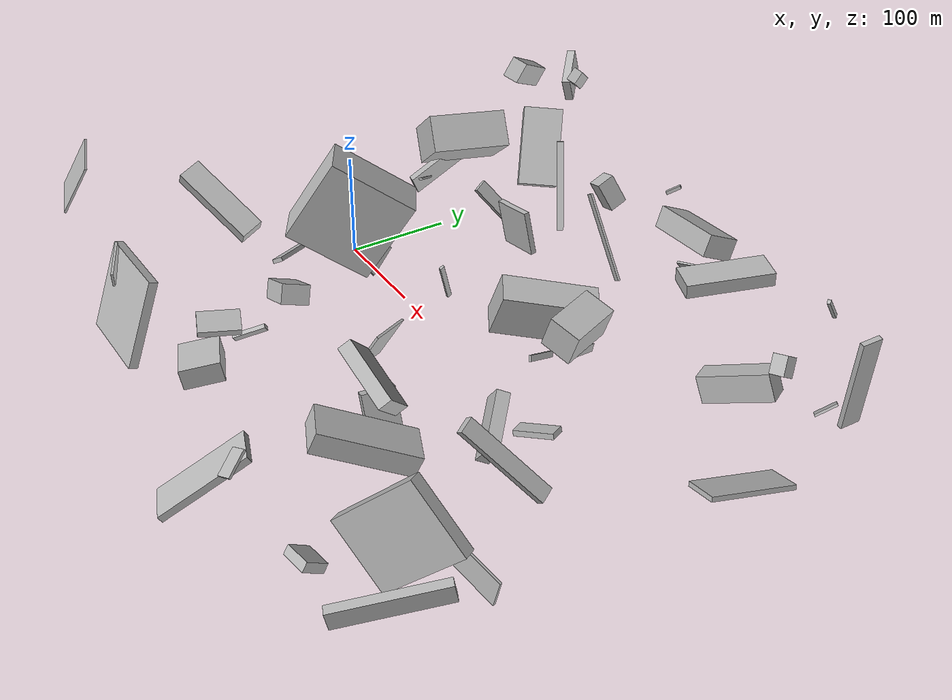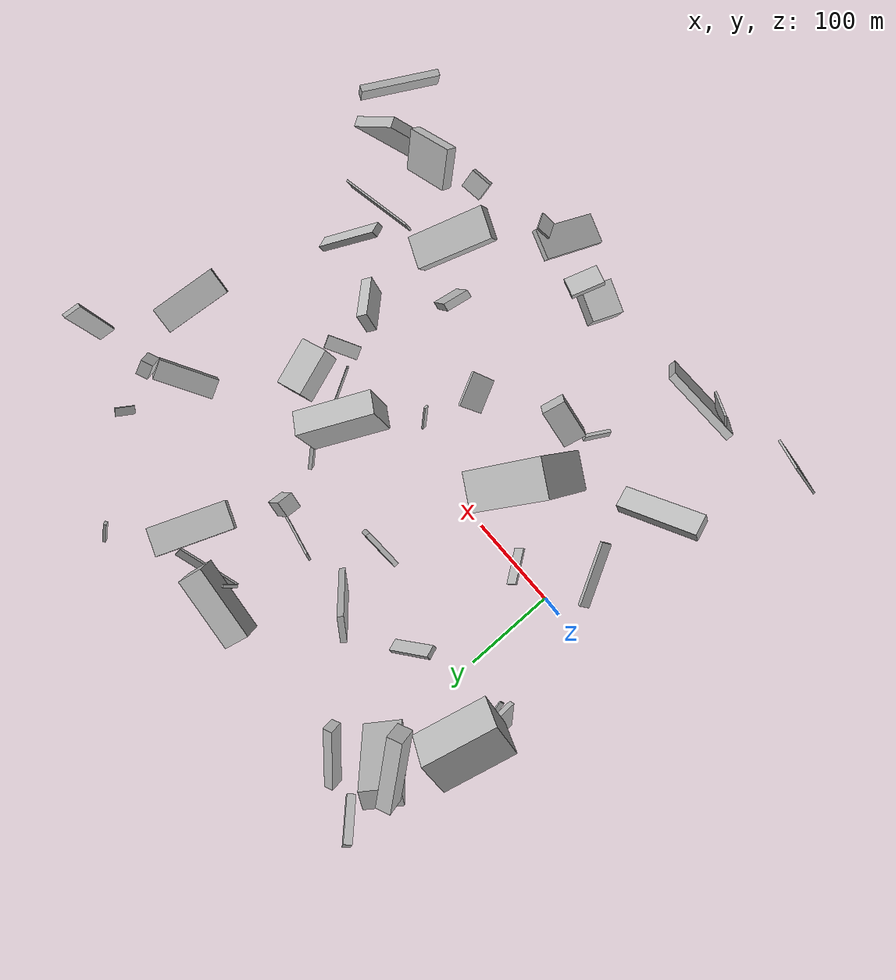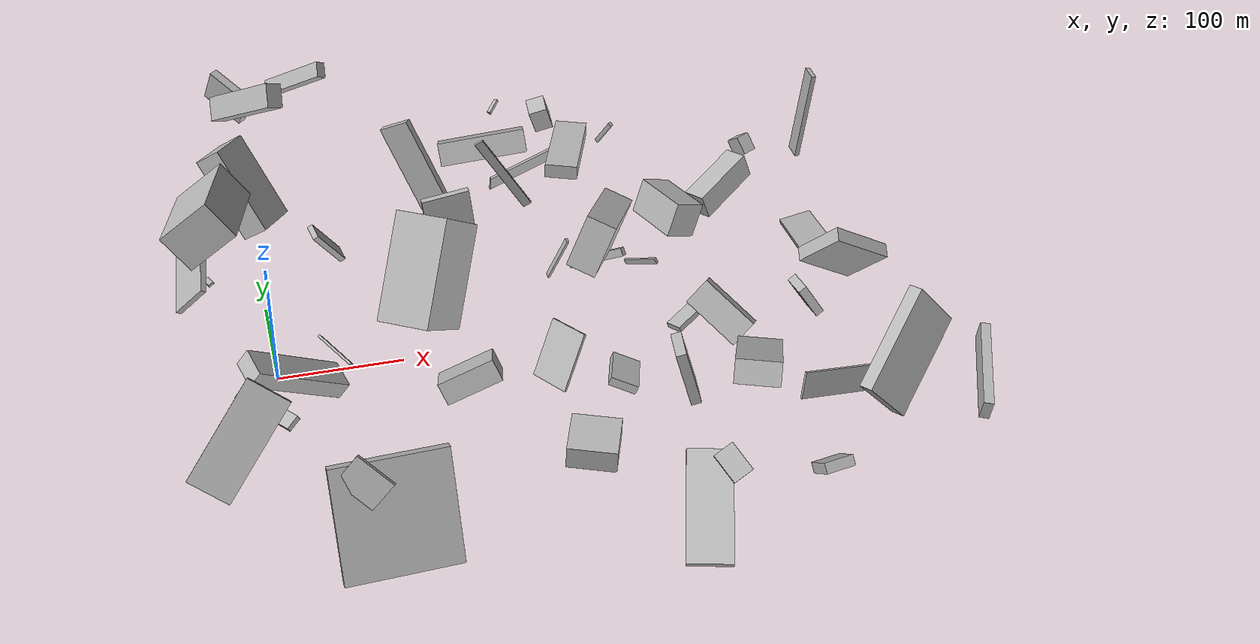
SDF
<sdf version="1.6">
 <world name="default">
  <scene>
   <sky><clouds><speed>12</speed></clouds></sky>
   <ambient>0.4 0.4 0.4 1</ambient>
   <background>0.7 0.7 0.7 1</background>
   <shadows>1</shadows>
  </scene>
  <gravity>0 0 -9.8066</gravity>
  <magnetic_field>6e-06 2.3e-05 -4.2e-05</magnetic_field>
  <physics default="0" name="default_physics" type="ode">
   <ode>
    <solver>
     <type>quick</type>
     <iters>10</iters>
     <sor>1.0</sor>
     <use_dynamic_moi_rescaling>0</use_dynamic_moi_rescaling>
    </solver>
    <constraints>
     <cfm>0</cfm>
     <erp>0.2</erp>
     <contact_max_correcting_vel>100</contact_max_correcting_vel>
     <contact_surface_layer>0.001</contact_surface_layer>
    </constraints>
   </ode>
   <max_step_size>0.004</max_step_size>
   <real_time_factor>1</real_time_factor>
   <real_time_update_rate>250</real_time_update_rate>
  </physics>
  <light name="sun" type="directional">
   <pose>0 0 10 0 0 0</pose>
   <diffuse>0.8 0.8 0.8 1</diffuse>
   <specular>0.2 0.2 0.2 1</specular>
   <attenuation>
    <range>1000</range>
    <constant>0.9</constant>
    <linear>0.01</linear>
    <quadratic>0.001</quadratic>
   </attenuation>
   <direction>-0.5 0.1 -0.9</direction>
  </light>
  <model name="building_1">
   <static>0</static>
   <pose>135.9279693735907 85.08385213537349 76.23654065703775 1.429710398014941 -0.13226039691528838 1.6093860551023655</pose>
   <link name="link">
    <gravity>0</gravity>
    <pose>0 0 20.0 0 0 0</pose>
    <collision name="collision"><geometry><box><size>5 41 40</size></box></geometry></collision>
    <visual name="visual">
     <cast_shadows>0</cast_shadows>
     <geometry><box><size>5 41 40</size></box></geometry>
     <material>
      <script>
       <uri>model://HANNAS_wall/materials/scripts</uri>
       <uri>model://HANNAS_wall/materials/textures</uri>
       <name>vrc/HANNAS_wall</name>
      </script>
     </material>
    </visual>
   </link>
  </model>
  <model name="building_2">
   <static>0</static>
   <pose>97.77671570861608 -87.31455111811961 138.6555854816888 -3.089718526787672 -1.001999431652993 0.9925606728284759</pose>
   <link name="link">
    <gravity>0</gravity>
    <pose>0 0 40.0 0 0 0</pose>
    <collision name="collision"><geometry><box><size>80 38 80</size></box></geometry></collision>
    <visual name="visual">
     <cast_shadows>0</cast_shadows>
     <geometry><box><size>80 38 80</size></box></geometry>
     <material>
      <script>
       <uri>model://HANNAS_wall/materials/scripts</uri>
       <uri>model://HANNAS_wall/materials/textures</uri>
       <name>vrc/HANNAS_wall</name>
      </script>
     </material>
    </visual>
   </link>
  </model>
  <model name="building_3">
   <static>0</static>
   <pose>198.55726802001362 -68.64118645636317 43.065910346665376 1.3841658521965154 -1.0454059790841923 0.6244381472720538</pose>
   <link name="link">
    <gravity>0</gravity>
    <pose>0 0 18.0 0 0 0</pose>
    <collision name="collision"><geometry><box><size>46 2 36</size></box></geometry></collision>
    <visual name="visual">
     <cast_shadows>0</cast_shadows>
     <geometry><box><size>46 2 36</size></box></geometry>
     <material>
      <script>
       <uri>model://HANNAS_wall/materials/scripts</uri>
       <uri>model://HANNAS_wall/materials/textures</uri>
       <name>vrc/HANNAS_wall</name>
      </script>
     </material>
    </visual>
   </link>
  </model>
  <model name="building_4">
   <static>0</static>
   <pose>453.9610752936651 -183.76840886598634 60.28374039407383 0.7707485759764982 -0.1058093895792002 -1.0498967853454233</pose>
   <link name="link">
    <gravity>0</gravity>
    <pose>0 0 29.5 0 0 0</pose>
    <collision name="collision"><geometry><box><size>10 80 59</size></box></geometry></collision>
    <visual name="visual">
     <cast_shadows>0</cast_shadows>
     <geometry><box><size>10 80 59</size></box></geometry>
     <material>
      <script>
       <uri>model://HANNAS_wall/materials/scripts</uri>
       <uri>model://HANNAS_wall/materials/textures</uri>
       <name>vrc/HANNAS_wall</name>
      </script>
     </material>
    </visual>
   </link>
  </model>
  <model name="building_5">
   <static>0</static>
   <pose>56.24313859414238 -241.1229909627799 53.28192664906584 -1.205779875870321 0.019706123370159312 -3.113200935970891</pose>
   <link name="link">
    <gravity>0</gravity>
    <pose>0 0 4.0 0 0 0</pose>
    <collision name="collision"><geometry><box><size>80 80 8</size></box></geometry></collision>
    <visual name="visual">
     <cast_shadows>0</cast_shadows>
     <geometry><box><size>80 80 8</size></box></geometry>
     <material>
      <script>
       <uri>model://HANNAS_wall/materials/scripts</uri>
       <uri>model://HANNAS_wall/materials/textures</uri>
       <name>vrc/HANNAS_wall</name>
      </script>
     </material>
    </visual>
   </link>
  </model>
  <model name="building_6">
   <static>0</static>
   <pose>132.08456802897751 -116.34280622630834 65.31712459974679 1.2772372655297608 -0.41668440043017724 -0.09053289063169231</pose>
   <link name="link">
    <gravity>0</gravity>
    <pose>0 0 12.0 0 0 0</pose>
    <collision name="collision"><geometry><box><size>43 17 24</size></box></geometry></collision>
    <visual name="visual">
     <cast_shadows>0</cast_shadows>
     <geometry><box><size>43 17 24</size></box></geometry>
     <material>
      <script>
       <uri>model://HANNAS_wall/materials/scripts</uri>
       <uri>model://HANNAS_wall/materials/textures</uri>
       <name>vrc/HANNAS_wall</name>
      </script>
     </material>
    </visual>
   </link>
  </model>
  <model name="building_7">
   <static>0</static>
   <pose>55.49234746081426 132.01218072310536 37.20243116829933 0.9969425882479298 -0.4764578670794011 1.86592471270913</pose>
   <link name="link">
    <gravity>0</gravity>
    <pose>0 0 2.5 0 0 0</pose>
    <collision name="collision"><geometry><box><size>13 59 5</size></box></geometry></collision>
    <visual name="visual">
     <cast_shadows>0</cast_shadows>
     <geometry><box><size>13 59 5</size></box></geometry>
     <material>
      <script>
       <uri>model://HANNAS_wall/materials/scripts</uri>
       <uri>model://HANNAS_wall/materials/textures</uri>
       <name>vrc/HANNAS_wall</name>
      </script>
     </material>
    </visual>
   </link>
  </model>
  <model name="building_8">
   <static>0</static>
   <pose>348.05358764785456 287.4686475230181 30.942705648397673 1.4020617687954786 -0.6720163562209502 2.1695715782144243</pose>
   <link name="link">
    <gravity>0</gravity>
    <pose>0 0 1.5 0 0 0</pose>
    <collision name="collision"><geometry><box><size>4 35 3</size></box></geometry></collision>
    <visual name="visual">
     <cast_shadows>0</cast_shadows>
     <geometry><box><size>4 35 3</size></box></geometry>
     <material>
      <script>
       <uri>model://HANNAS_wall/materials/scripts</uri>
       <uri>model://HANNAS_wall/materials/textures</uri>
       <name>vrc/HANNAS_wall</name>
      </script>
     </material>
    </visual>
   </link>
  </model>
  <model name="building_9">
   <static>0</static>
   <pose>220.63235888393126 256.7569880581992 49.814312078683834 1.1904177250550283 -0.14170560503806415 -0.14246152685886346</pose>
   <link name="link">
    <gravity>0</gravity>
    <pose>0 0 15.0 0 0 0</pose>
    <collision name="collision"><geometry><box><size>80 21 30</size></box></geometry></collision>
    <visual name="visual">
     <cast_shadows>0</cast_shadows>
     <geometry><box><size>80 21 30</size></box></geometry>
     <material>
      <script>
       <uri>model://HANNAS_wall/materials/scripts</uri>
       <uri>model://HANNAS_wall/materials/textures</uri>
       <name>vrc/HANNAS_wall</name>
      </script>
     </material>
    </visual>
   </link>
  </model>
  <model name="building_10">
   <static>0</static>
   <pose>380.2698844635523 -145.90740805112185 28.202520308499313 1.734374932067098 0.1104295917960425 1.7571979491034864</pose>
   <link name="link">
    <gravity>0</gravity>
    <pose>0 0 40.0 0 0 0</pose>
    <collision name="collision"><geometry><box><size>2 22 80</size></box></geometry></collision>
    <visual name="visual">
     <cast_shadows>0</cast_shadows>
     <geometry><box><size>2 22 80</size></box></geometry>
     <material>
      <script>
       <uri>model://HANNAS_wall/materials/scripts</uri>
       <uri>model://HANNAS_wall/materials/textures</uri>
       <name>vrc/HANNAS_wall</name>
      </script>
     </material>
    </visual>
   </link>
  </model>
  <model name="building_11">
   <static>0</static>
   <pose>321.838155047811 24.409467259704538 81.60115779936199 -0.03803490252576995 -0.3112256768649246 -2.795173495720992</pose>
   <link name="link">
    <gravity>0</gravity>
    <pose>0 0 14.0 0 0 0</pose>
    <collision name="collision"><geometry><box><size>27 47 28</size></box></geometry></collision>
    <visual name="visual">
     <cast_shadows>0</cast_shadows>
     <geometry><box><size>27 47 28</size></box></geometry>
     <material>
      <script>
       <uri>model://HANNAS_wall/materials/scripts</uri>
       <uri>model://HANNAS_wall/materials/textures</uri>
       <name>vrc/HANNAS_wall</name>
      </script>
     </material>
    </visual>
   </link>
  </model>
  <model name="building_12">
   <static>0</static>
   <pose>289.02381667478863 67.80123465973622 67.27512734299764 0.9947589544283135 -1.1715440639287575 0.0731590325749671</pose>
   <link name="link">
    <gravity>0</gravity>
    <pose>0 0 40.0 0 0 0</pose>
    <collision name="collision"><geometry><box><size>45 25 80</size></box></geometry></collision>
    <visual name="visual">
     <cast_shadows>0</cast_shadows>
     <geometry><box><size>45 25 80</size></box></geometry>
     <material>
      <script>
       <uri>model://HANNAS_wall/materials/scripts</uri>
       <uri>model://HANNAS_wall/materials/textures</uri>
       <name>vrc/HANNAS_wall</name>
      </script>
     </material>
    </visual>
   </link>
  </model>
  <model name="building_13">
   <static>0</static>
   <pose>280.8004040122886 69.11129277051654 24.14712396675172 -0.08885506734157592 -0.5344516204194488 -0.9038894093902209</pose>
   <link name="link">
    <gravity>0</gravity>
    <pose>0 0 3.5 0 0 0</pose>
    <collision name="collision"><geometry><box><size>64 4 7</size></box></geometry></collision>
    <visual name="visual">
     <cast_shadows>0</cast_shadows>
     <geometry><box><size>64 4 7</size></box></geometry>
     <material>
      <script>
       <uri>model://HANNAS_wall/materials/scripts</uri>
       <uri>model://HANNAS_wall/materials/textures</uri>
       <name>vrc/HANNAS_wall</name>
      </script>
     </material>
    </visual>
   </link>
  </model>
  <model name="building_14">
   <static>0</static>
   <pose>276.12812685013466 176.24819336278364 55.37804102795704 -1.5143945206670097 0.02680963164158355 -0.374517178279104</pose>
   <link name="link">
    <gravity>0</gravity>
    <pose>0 0 40.0 0 0 0</pose>
    <collision name="collision"><geometry><box><size>29 13 80</size></box></geometry></collision>
    <visual name="visual">
     <cast_shadows>0</cast_shadows>
     <geometry><box><size>29 13 80</size></box></geometry>
     <material>
      <script>
       <uri>model://HANNAS_wall/materials/scripts</uri>
       <uri>model://HANNAS_wall/materials/textures</uri>
       <name>vrc/HANNAS_wall</name>
      </script>
     </material>
    </visual>
   </link>
  </model>
  <model name="building_15">
   <static>0</static>
   <pose>-13.803511173818926 -54.57821112592628 15.041237932252159 -3.000448304352128 0.5124062991504189 -2.5461970798683096</pose>
   <link name="link">
    <gravity>0</gravity>
    <pose>0 0 2.0 0 0 0</pose>
    <collision name="collision"><geometry><box><size>12 70 4</size></box></geometry></collision>
    <visual name="visual">
     <cast_shadows>0</cast_shadows>
     <geometry><box><size>12 70 4</size></box></geometry>
     <material>
      <script>
       <uri>model://HANNAS_wall/materials/scripts</uri>
       <uri>model://HANNAS_wall/materials/textures</uri>
       <name>vrc/HANNAS_wall</name>
      </script>
     </material>
    </visual>
   </link>
  </model>
  <model name="building_16">
   <static>0</static>
   <pose>292.7819141178504 27.50824020211863 47.38201784983565 -1.1013301111057514 0.24135716127917178 -2.586724096817748</pose>
   <link name="link">
    <gravity>0</gravity>
    <pose>0 0 20.0 0 0 0</pose>
    <collision name="collision"><geometry><box><size>2 5 40</size></box></geometry></collision>
    <visual name="visual">
     <cast_shadows>0</cast_shadows>
     <geometry><box><size>2 5 40</size></box></geometry>
     <material>
      <script>
       <uri>model://HANNAS_wall/materials/scripts</uri>
       <uri>model://HANNAS_wall/materials/textures</uri>
       <name>vrc/HANNAS_wall</name>
      </script>
     </material>
    </visual>
   </link>
  </model>
  <model name="building_17">
   <static>0</static>
   <pose>-0.49241953550656703 190.7644161116795 150.70561621288513 2.245016724415286 -1.0036805787387144 1.4978814321787464</pose>
   <link name="link">
    <gravity>0</gravity>
    <pose>0 0 7.5 0 0 0</pose>
    <collision name="collision"><geometry><box><size>20 80 15</size></box></geometry></collision>
    <visual name="visual">
     <cast_shadows>0</cast_shadows>
     <geometry><box><size>20 80 15</size></box></geometry>
     <material>
      <script>
       <uri>model://HANNAS_wall/materials/scripts</uri>
       <uri>model://HANNAS_wall/materials/textures</uri>
       <name>vrc/HANNAS_wall</name>
      </script>
     </material>
    </visual>
   </link>
  </model>
  <model name="building_18">
   <static>0</static>
   <pose>402.1599068183041 -176.63451968693002 153.787829399224 -0.8517013669430594 0.7581575561923188 2.2560065204931643</pose>
   <link name="link">
    <gravity>0</gravity>
    <pose>0 0 23.5 0 0 0</pose>
    <collision name="collision"><geometry><box><size>37 10 47</size></box></geometry></collision>
    <visual name="visual">
     <cast_shadows>0</cast_shadows>
     <geometry><box><size>37 10 47</size></box></geometry>
     <material>
      <script>
       <uri>model://HANNAS_wall/materials/scripts</uri>
       <uri>model://HANNAS_wall/materials/textures</uri>
       <name>vrc/HANNAS_wall</name>
      </script>
     </material>
    </visual>
   </link>
  </model>
  <model name="building_19">
   <static>0</static>
   <pose>220.38915033714568 206.6363843377662 113.83730822266142 -3.1110005498170787 0.5868203077420697 -2.383576263447266</pose>
   <link name="link">
    <gravity>0</gravity>
    <pose>0 0 1.5 0 0 0</pose>
    <collision name="collision"><geometry><box><size>14 3 3</size></box></geometry></collision>
    <visual name="visual">
     <cast_shadows>0</cast_shadows>
     <geometry><box><size>14 3 3</size></box></geometry>
     <material>
      <script>
       <uri>model://HANNAS_wall/materials/scripts</uri>
       <uri>model://HANNAS_wall/materials/textures</uri>
       <name>vrc/HANNAS_wall</name>
      </script>
     </material>
    </visual>
   </link>
  </model>
  <model name="building_20">
   <static>0</static>
   <pose>252.86211267313683 236.46039378695423 32.07777747365922 -2.6952466720300183 -0.9535266716356252 -1.7112304637964513</pose>
   <link name="link">
    <gravity>0</gravity>
    <pose>0 0 1.0 0 0 0</pose>
    <collision name="collision"><geometry><box><size>22 67 2</size></box></geometry></collision>
    <visual name="visual">
     <cast_shadows>0</cast_shadows>
     <geometry><box><size>22 67 2</size></box></geometry>
     <material>
      <script>
       <uri>model://HANNAS_wall/materials/scripts</uri>
       <uri>model://HANNAS_wall/materials/textures</uri>
       <name>vrc/HANNAS_wall</name>
      </script>
     </material>
    </visual>
   </link>
  </model>
  <model name="building_21">
   <static>0</static>
   <pose>472.15782506594655 70.61774132404847 23.55317794861337 0.2665370025052144 -0.18874705481144957 -1.7295882419241213</pose>
   <link name="link">
    <gravity>0</gravity>
    <pose>0 0 2.0 0 0 0</pose>
    <collision name="collision"><geometry><box><size>75 28 4</size></box></geometry></collision>
    <visual name="visual">
     <cast_shadows>0</cast_shadows>
     <geometry><box><size>75 28 4</size></box></geometry>
     <material>
      <script>
       <uri>model://HANNAS_wall/materials/scripts</uri>
       <uri>model://HANNAS_wall/materials/textures</uri>
       <name>vrc/HANNAS_wall</name>
      </script>
     </material>
    </visual>
   </link>
  </model>
  <model name="building_22">
   <static>0</static>
   <pose>9.653085965220418 -144.87421983025888 94.45338992409958 1.228518551407897 -0.556178600382723 -2.667192608511304</pose>
   <link name="link">
    <gravity>0</gravity>
    <pose>0 0 11.0 0 0 0</pose>
    <collision name="collision"><geometry><box><size>80 13 22</size></box></geometry></collision>
    <visual name="visual">
     <cast_shadows>0</cast_shadows>
     <geometry><box><size>80 13 22</size></box></geometry>
     <material>
      <script>
       <uri>model://HANNAS_wall/materials/scripts</uri>
       <uri>model://HANNAS_wall/materials/textures</uri>
       <name>vrc/HANNAS_wall</name>
      </script>
     </material>
    </visual>
   </link>
  </model>
  <model name="building_23">
   <static>0</static>
   <pose>367.76268276666656 -221.73031129063563 16.02416821060488 0.07192199980652428 0.9504193157681055 -1.368799994605098</pose>
   <link name="link">
    <gravity>0</gravity>
    <pose>0 0 10.0 0 0 0</pose>
    <collision name="collision"><geometry><box><size>8 23 20</size></box></geometry></collision>
    <visual name="visual">
     <cast_shadows>0</cast_shadows>
     <geometry><box><size>8 23 20</size></box></geometry>
     <material>
      <script>
       <uri>model://HANNAS_wall/materials/scripts</uri>
       <uri>model://HANNAS_wall/materials/textures</uri>
       <name>vrc/HANNAS_wall</name>
      </script>
     </material>
    </visual>
   </link>
  </model>
  <model name="building_24">
   <static>0</static>
   <pose>50.20008266881004 221.4005488007826 145.52925666630858 0.5399474279057861 -0.44236353100919207 -2.587567685567172</pose>
   <link name="link">
    <gravity>0</gravity>
    <pose>0 0 6.5 0 0 0</pose>
    <collision name="collision"><geometry><box><size>9 67 13</size></box></geometry></collision>
    <visual name="visual">
     <cast_shadows>0</cast_shadows>
     <geometry><box><size>9 67 13</size></box></geometry>
     <material>
      <script>
       <uri>model://HANNAS_wall/materials/scripts</uri>
       <uri>model://HANNAS_wall/materials/textures</uri>
       <name>vrc/HANNAS_wall</name>
      </script>
     </material>
    </visual>
   </link>
  </model>
  <model name="building_25">
   <static>0</static>
   <pose>206.52571530602953 -216.09826408509457 124.38684251852776 1.924538140779167 0.0711672393572327 1.2449197942079504</pose>
   <link name="link">
    <gravity>0</gravity>
    <pose>0 0 9.5 0 0 0</pose>
    <collision name="collision"><geometry><box><size>32 6 19</size></box></geometry></collision>
    <visual name="visual">
     <cast_shadows>0</cast_shadows>
     <geometry><box><size>32 6 19</size></box></geometry>
     <material>
      <script>
       <uri>model://HANNAS_wall/materials/scripts</uri>
       <uri>model://HANNAS_wall/materials/textures</uri>
       <name>vrc/HANNAS_wall</name>
      </script>
     </material>
    </visual>
   </link>
  </model>
  <model name="building_26">
   <static>0</static>
   <pose>-10.51476849820493 265.95167845163155 111.77762169868988 -0.11880750567463538 -0.4766854687550612 2.3872584453710597</pose>
   <link name="link">
    <gravity>0</gravity>
    <pose>0 0 14.5 0 0 0</pose>
    <collision name="collision"><geometry><box><size>41 8 29</size></box></geometry></collision>
    <visual name="visual">
     <cast_shadows>0</cast_shadows>
     <geometry><box><size>41 8 29</size></box></geometry>
     <material>
      <script>
       <uri>model://HANNAS_wall/materials/scripts</uri>
       <uri>model://HANNAS_wall/materials/textures</uri>
       <name>vrc/HANNAS_wall</name>
      </script>
     </material>
    </visual>
   </link>
  </model>
  <model name="building_27">
   <static>0</static>
   <pose>-23.8456732859048 -252.02310136079882 126.88820611918274 -0.5880043779974765 -0.9072353908135828 0.31791018993289893</pose>
   <link name="link">
    <gravity>0</gravity>
    <pose>0 0 15.0 0 0 0</pose>
    <collision name="collision"><geometry><box><size>75 2 30</size></box></geometry></collision>
    <visual name="visual">
     <cast_shadows>0</cast_shadows>
     <geometry><box><size>75 2 30</size></box></geometry>
     <material>
      <script>
       <uri>model://HANNAS_wall/materials/scripts</uri>
       <uri>model://HANNAS_wall/materials/textures</uri>
       <name>vrc/HANNAS_wall</name>
      </script>
     </material>
    </visual>
   </link>
  </model>
  <model name="building_28">
   <static>0</static>
   <pose>245.10327618224926 120.28895773329 135.79805776678074 -0.3144991511020692 -0.4215238888571669 1.5379392114058736</pose>
   <link name="link">
    <gravity>0</gravity>
    <pose>0 0 12.5 0 0 0</pose>
    <collision name="collision"><geometry><box><size>15 15 25</size></box></geometry></collision>
    <visual name="visual">
     <cast_shadows>0</cast_shadows>
     <geometry><box><size>15 15 25</size></box></geometry>
     <material>
      <script>
       <uri>model://HANNAS_wall/materials/scripts</uri>
       <uri>model://HANNAS_wall/materials/textures</uri>
       <name>vrc/HANNAS_wall</name>
      </script>
     </material>
    </visual>
   </link>
  </model>
  <model name="building_29">
   <static>0</static>
   <pose>91.68249545363385 -149.6599290647472 10.123981899127022 0.5501444628258453 -0.35183386541269035 1.0477873528920731</pose>
   <link name="link">
    <gravity>0</gravity>
    <pose>0 0 3.5 0 0 0</pose>
    <collision name="collision"><geometry><box><size>31 4 7</size></box></geometry></collision>
    <visual name="visual">
     <cast_shadows>0</cast_shadows>
     <geometry><box><size>31 4 7</size></box></geometry>
     <material>
      <script>
       <uri>model://HANNAS_wall/materials/scripts</uri>
       <uri>model://HANNAS_wall/materials/textures</uri>
       <name>vrc/HANNAS_wall</name>
      </script>
     </material>
    </visual>
   </link>
  </model>
  <model name="building_30">
   <static>0</static>
   <pose>290.24661827617604 -141.16691666794662 46.03310908074484 1.5099970304036427 0.2938462173566933 2.956548334316892</pose>
   <link name="link">
    <gravity>0</gravity>
    <pose>0 0 13.5 0 0 0</pose>
    <collision name="collision"><geometry><box><size>8 49 27</size></box></geometry></collision>
    <visual name="visual">
     <cast_shadows>0</cast_shadows>
     <geometry><box><size>8 49 27</size></box></geometry>
     <material>
      <script>
       <uri>model://HANNAS_wall/materials/scripts</uri>
       <uri>model://HANNAS_wall/materials/textures</uri>
       <name>vrc/HANNAS_wall</name>
      </script>
     </material>
    </visual>
   </link>
  </model>
  <model name="building_31">
   <static>0</static>
   <pose>192.8391028586915 -227.45247109502262 65.85960720229905 0.03270817433637371 -0.1517187050431544 1.190104890434826</pose>
   <link name="link">
    <gravity>0</gravity>
    <pose>0 0 9.0 0 0 0</pose>
    <collision name="collision"><geometry><box><size>32 34 18</size></box></geometry></collision>
    <visual name="visual">
     <cast_shadows>0</cast_shadows>
     <geometry><box><size>32 34 18</size></box></geometry>
     <material>
      <script>
       <uri>model://HANNAS_wall/materials/scripts</uri>
       <uri>model://HANNAS_wall/materials/textures</uri>
       <name>vrc/HANNAS_wall</name>
      </script>
     </material>
    </visual>
   </link>
  </model>
  <model name="building_32">
   <static>0</static>
   <pose>-58.70968130100065 137.210652364898 36.674439663093054 2.185423551120288 -0.5127990847756095 1.4616236695273754</pose>
   <link name="link">
    <gravity>0</gravity>
    <pose>0 0 2.5 0 0 0</pose>
    <collision name="collision"><geometry><box><size>80 43 5</size></box></geometry></collision>
    <visual name="visual">
     <cast_shadows>0</cast_shadows>
     <geometry><box><size>80 43 5</size></box></geometry>
     <material>
      <script>
       <uri>model://HANNAS_wall/materials/scripts</uri>
       <uri>model://HANNAS_wall/materials/textures</uri>
       <name>vrc/HANNAS_wall</name>
      </script>
     </material>
    </visual>
   </link>
  </model>
  <model name="building_33">
   <static>0</static>
   <pose>335.26513171386233 -160.90414712230933 80.03882450073696 -2.7427853379964175 0.008210654471896586 2.7338123368105296</pose>
   <link name="link">
    <gravity>0</gravity>
    <pose>0 0 9.0 0 0 0</pose>
    <collision name="collision"><geometry><box><size>33 80 18</size></box></geometry></collision>
    <visual name="visual">
     <cast_shadows>0</cast_shadows>
     <geometry><box><size>33 80 18</size></box></geometry>
     <material>
      <script>
       <uri>model://HANNAS_wall/materials/scripts</uri>
       <uri>model://HANNAS_wall/materials/textures</uri>
       <name>vrc/HANNAS_wall</name>
      </script>
     </material>
    </visual>
   </link>
  </model>
  <model name="building_34">
   <static>0</static>
   <pose>-19.112112341966156 145.71088784020762 85.24910402220651 -3.039827884863636 -0.9015209128245357 2.8435532323570936</pose>
   <link name="link">
    <gravity>0</gravity>
    <pose>0 0 25.5 0 0 0</pose>
    <collision name="collision"><geometry><box><size>37 80 51</size></box></geometry></collision>
    <visual name="visual">
     <cast_shadows>0</cast_shadows>
     <geometry><box><size>37 80 51</size></box></geometry>
     <material>
      <script>
       <uri>model://HANNAS_wall/materials/scripts</uri>
       <uri>model://HANNAS_wall/materials/textures</uri>
       <name>vrc/HANNAS_wall</name>
      </script>
     </material>
    </visual>
   </link>
  </model>
  <model name="building_35">
   <static>0</static>
   <pose>149.7384745566359 135.8243583897097 103.15866318760649 3.046626835592503 -1.1234647561692688 2.605906457964093</pose>
   <link name="link">
    <gravity>0</gravity>
    <pose>0 0 14.0 0 0 0</pose>
    <collision name="collision"><geometry><box><size>80 6 28</size></box></geometry></collision>
    <visual name="visual">
     <cast_shadows>0</cast_shadows>
     <geometry><box><size>80 6 28</size></box></geometry>
     <material>
      <script>
       <uri>model://HANNAS_wall/materials/scripts</uri>
       <uri>model://HANNAS_wall/materials/textures</uri>
       <name>vrc/HANNAS_wall</name>
      </script>
     </material>
    </visual>
   </link>
  </model>
  <model name="building_36">
   <static>0</static>
   <pose>50.11016882535927 4.10645337157761 11.784975725534043 0.3420382857248242 -0.6147760620505537 0.39023306584815937</pose>
   <link name="link">
    <gravity>0</gravity>
    <pose>0 0 6.5 0 0 0</pose>
    <collision name="collision"><geometry><box><size>2 38 13</size></box></geometry></collision>
    <visual name="visual">
     <cast_shadows>0</cast_shadows>
     <geometry><box><size>2 38 13</size></box></geometry>
     <material>
      <script>
       <uri>model://HANNAS_wall/materials/scripts</uri>
       <uri>model://HANNAS_wall/materials/textures</uri>
       <name>vrc/HANNAS_wall</name>
      </script>
     </material>
    </visual>
   </link>
  </model>
  <model name="building_37">
   <static>0</static>
   <pose>214.41595418076517 136.31550887531353 81.82020027132705 1.3995554290324415 0.5431874602841531 2.8893179608115735</pose>
   <link name="link">
    <gravity>0</gravity>
    <pose>0 0 1.0 0 0 0</pose>
    <collision name="collision"><geometry><box><size>8 80 2</size></box></geometry></collision>
    <visual name="visual">
     <cast_shadows>0</cast_shadows>
     <geometry><box><size>8 80 2</size></box></geometry>
     <material>
      <script>
       <uri>model://HANNAS_wall/materials/scripts</uri>
       <uri>model://HANNAS_wall/materials/textures</uri>
       <name>vrc/HANNAS_wall</name>
      </script>
     </material>
    </visual>
   </link>
  </model>
  <model name="building_38">
   <static>0</static>
   <pose>493.82758610146493 156.46602415951318 102.55503070706305 2.0764444979890193 -1.469418706486468 -0.5726449426919941</pose>
   <link name="link">
    <gravity>0</gravity>
    <pose>0 0 8.5 0 0 0</pose>
    <collision name="collision"><geometry><box><size>80 4 17</size></box></geometry></collision>
    <visual name="visual">
     <cast_shadows>0</cast_shadows>
     <geometry><box><size>80 4 17</size></box></geometry>
     <material>
      <script>
       <uri>model://HANNAS_wall/materials/scripts</uri>
       <uri>model://HANNAS_wall/materials/textures</uri>
       <name>vrc/HANNAS_wall</name>
      </script>
     </material>
    </visual>
   </link>
  </model>
  <model name="building_39">
   <static>0</static>
   <pose>48.50047989826056 -250.36422919632486 75.89419187764969 -0.26188518650425024 -0.9390936807889206 -0.2480964960167791</pose>
   <link name="link">
    <gravity>0</gravity>
    <pose>0 0 15.0 0 0 0</pose>
    <collision name="collision"><geometry><box><size>26 2 30</size></box></geometry></collision>
    <visual name="visual">
     <cast_shadows>0</cast_shadows>
     <geometry><box><size>26 2 30</size></box></geometry>
     <material>
      <script>
       <uri>model://HANNAS_wall/materials/scripts</uri>
       <uri>model://HANNAS_wall/materials/textures</uri>
       <name>vrc/HANNAS_wall</name>
      </script>
     </material>
    </visual>
   </link>
  </model>
  <model name="building_40">
   <static>0</static>
   <pose>4.998987321796594 218.08634291929525 59.11404538966149 2.1338089761277566 -0.06413694809496708 -2.167407671602455</pose>
   <link name="link">
    <gravity>0</gravity>
    <pose>0 0 13.0 0 0 0</pose>
    <collision name="collision"><geometry><box><size>40 80 26</size></box></geometry></collision>
    <visual name="visual">
     <cast_shadows>0</cast_shadows>
     <geometry><box><size>40 80 26</size></box></geometry>
     <material>
      <script>
       <uri>model://HANNAS_wall/materials/scripts</uri>
       <uri>model://HANNAS_wall/materials/textures</uri>
       <name>vrc/HANNAS_wall</name>
      </script>
     </material>
    </visual>
   </link>
  </model>
  <model name="building_41">
   <static>0</static>
   <pose>278.68337013622045 -247.52955737377943 48.98638930896878 -0.9045864130763106 -0.8336016751554463 -1.8734272350486987</pose>
   <link name="link">
    <gravity>0</gravity>
    <pose>0 0 8.0 0 0 0</pose>
    <collision name="collision"><geometry><box><size>2 23 16</size></box></geometry></collision>
    <visual name="visual">
     <cast_shadows>0</cast_shadows>
     <geometry><box><size>2 23 16</size></box></geometry>
     <material>
      <script>
       <uri>model://HANNAS_wall/materials/scripts</uri>
       <uri>model://HANNAS_wall/materials/textures</uri>
       <name>vrc/HANNAS_wall</name>
      </script>
     </material>
    </visual>
   </link>
  </model>
  <model name="building_42">
   <static>0</static>
   <pose>383.33219475392343 108.62254561574012 43.710126584064 -0.2282845383573086 1.1710108958222574 0.2743948770612789</pose>
   <link name="link">
    <gravity>0</gravity>
    <pose>0 0 29.5 0 0 0</pose>
    <collision name="collision"><geometry><box><size>23 20 59</size></box></geometry></collision>
    <visual name="visual">
     <cast_shadows>0</cast_shadows>
     <geometry><box><size>23 20 59</size></box></geometry>
     <material>
      <script>
       <uri>model://HANNAS_wall/materials/scripts</uri>
       <uri>model://HANNAS_wall/materials/textures</uri>
       <name>vrc/HANNAS_wall</name>
      </script>
     </material>
    </visual>
   </link>
  </model>
  <model name="building_43">
   <static>0</static>
   <pose>437.3607128512663 204.53774433285597 21.444119721941725 -2.490951606172403 -0.8201017771019966 -2.8966270516306243</pose>
   <link name="link">
    <gravity>0</gravity>
    <pose>0 0 10.0 0 0 0</pose>
    <collision name="collision"><geometry><box><size>2 9 20</size></box></geometry></collision>
    <visual name="visual">
     <cast_shadows>0</cast_shadows>
     <geometry><box><size>2 9 20</size></box></geometry>
     <material>
      <script>
       <uri>model://HANNAS_wall/materials/scripts</uri>
       <uri>model://HANNAS_wall/materials/textures</uri>
       <name>vrc/HANNAS_wall</name>
      </script>
     </material>
    </visual>
   </link>
  </model>
  <model name="building_44">
   <static>0</static>
   <pose>-46.12727304941435 106.4782711263258 29.556113776177973 1.1571871320708498 0.19107528100990365 1.8429022939989868</pose>
   <link name="link">
    <gravity>0</gravity>
    <pose>0 0 2.5 0 0 0</pose>
    <collision name="collision"><geometry><box><size>14 2 5</size></box></geometry></collision>
    <visual name="visual">
     <cast_shadows>0</cast_shadows>
     <geometry><box><size>14 2 5</size></box></geometry>
     <material>
      <script>
       <uri>model://HANNAS_wall/materials/scripts</uri>
       <uri>model://HANNAS_wall/materials/textures</uri>
       <name>vrc/HANNAS_wall</name>
      </script>
     </material>
    </visual>
   </link>
  </model>
  <model name="building_45">
   <static>0</static>
   <pose>479.6069570775388 -222.38911437442414 72.52006730478172 -0.18184790436250725 -0.08237657857955362 2.7263592213385976</pose>
   <link name="link">
    <gravity>0</gravity>
    <pose>0 0 7.5 0 0 0</pose>
    <collision name="collision"><geometry><box><size>7 79 15</size></box></geometry></collision>
    <visual name="visual">
     <cast_shadows>0</cast_shadows>
     <geometry><box><size>7 79 15</size></box></geometry>
     <material>
      <script>
       <uri>model://HANNAS_wall/materials/scripts</uri>
       <uri>model://HANNAS_wall/materials/textures</uri>
       <name>vrc/HANNAS_wall</name>
      </script>
     </material>
    </visual>
   </link>
  </model>
  <model name="building_46">
   <static>0</static>
   <pose>420.33238113919856 -68.90788846120785 42.44933112983411 0.5220223279877396 -0.6425764198765238 0.08271924726351904</pose>
   <link name="link">
    <gravity>0</gravity>
    <pose>0 0 40.0 0 0 0</pose>
    <collision name="collision"><geometry><box><size>7 13 80</size></box></geometry></collision>
    <visual name="visual">
     <cast_shadows>0</cast_shadows>
     <geometry><box><size>7 13 80</size></box></geometry>
     <material>
      <script>
       <uri>model://HANNAS_wall/materials/scripts</uri>
       <uri>model://HANNAS_wall/materials/textures</uri>
       <name>vrc/HANNAS_wall</name>
      </script>
     </material>
    </visual>
   </link>
  </model>
  <model name="building_47">
   <static>0</static>
   <pose>349.4342313616258 -5.7661624865086125 20.180136282883232 1.8617066225249692 -0.13235866104452934 -1.0913061095123133</pose>
   <link name="link">
    <gravity>0</gravity>
    <pose>0 0 18.0 0 0 0</pose>
    <collision name="collision"><geometry><box><size>14 5 36</size></box></geometry></collision>
    <visual name="visual">
     <cast_shadows>0</cast_shadows>
     <geometry><box><size>14 5 36</size></box></geometry>
     <material>
      <script>
       <uri>model://HANNAS_wall/materials/scripts</uri>
       <uri>model://HANNAS_wall/materials/textures</uri>
       <name>vrc/HANNAS_wall</name>
      </script>
     </material>
    </visual>
   </link>
  </model>
  <model name="building_48">
   <static>0</static>
   <pose>336.27316549781034 -61.49838436170946 37.846996291117634 0.5983117570655212 0.33557039675577083 1.005802092209695</pose>
   <link name="link">
    <gravity>0</gravity>
    <pose>0 0 12.0 0 0 0</pose>
    <collision name="collision"><geometry><box><size>11 50 24</size></box></geometry></collision>
    <visual name="visual">
     <cast_shadows>0</cast_shadows>
     <geometry><box><size>11 50 24</size></box></geometry>
     <material>
      <script>
       <uri>model://HANNAS_wall/materials/scripts</uri>
       <uri>model://HANNAS_wall/materials/textures</uri>
       <name>vrc/HANNAS_wall</name>
      </script>
     </material>
    </visual>
   </link>
  </model>
  <model name="building_49">
   <static>0</static>
   <pose>249.72949284472142 -256.2127671718713 30.3465351950301 1.487170705451726 1.0106538654115675 1.1739403647057518</pose>
   <link name="link">
    <gravity>0</gravity>
    <pose>0 0 16.0 0 0 0</pose>
    <collision name="collision"><geometry><box><size>6 80 32</size></box></geometry></collision>
    <visual name="visual">
     <cast_shadows>0</cast_shadows>
     <geometry><box><size>6 80 32</size></box></geometry>
     <material>
      <script>
       <uri>model://HANNAS_wall/materials/scripts</uri>
       <uri>model://HANNAS_wall/materials/textures</uri>
       <name>vrc/HANNAS_wall</name>
      </script>
     </material>
    </visual>
   </link>
  </model>
  <model name="building_50">
   <static>0</static>
   <pose>220.50436924415453 -28.101562773592438 94.51123159810608 -1.0045176418414175 1.1306185347696927 2.2576100582308</pose>
   <link name="link">
    <gravity>0</gravity>
    <pose>0 0 1.0 0 0 0</pose>
    <collision name="collision"><geometry><box><size>42 4 2</size></box></geometry></collision>
    <visual name="visual">
     <cast_shadows>0</cast_shadows>
     <geometry><box><size>42 4 2</size></box></geometry>
     <material>
      <script>
       <uri>model://HANNAS_wall/materials/scripts</uri>
       <uri>model://HANNAS_wall/materials/textures</uri>
       <name>vrc/HANNAS_wall</name>
      </script>
     </material>
    </visual>
   </link>
  </model>
  <model name="building_51">
   <static>0</static>
   <pose>435.1672029693858 133.73871163191944 75.9347679954397 -0.5918455026764163 -0.17892862080626787 0.3588407723536137</pose>
   <link name="link">
    <gravity>0</gravity>
    <pose>0 0 8.0 0 0 0</pose>
    <collision name="collision"><geometry><box><size>12 17 16</size></box></geometry></collision>
    <visual name="visual">
     <cast_shadows>0</cast_shadows>
     <geometry><box><size>12 17 16</size></box></geometry>
     <material>
      <script>
       <uri>model://HANNAS_wall/materials/scripts</uri>
       <uri>model://HANNAS_wall/materials/textures</uri>
       <name>vrc/HANNAS_wall</name>
      </script>
     </material>
    </visual>
   </link>
  </model>
 </world>
</sdf>
